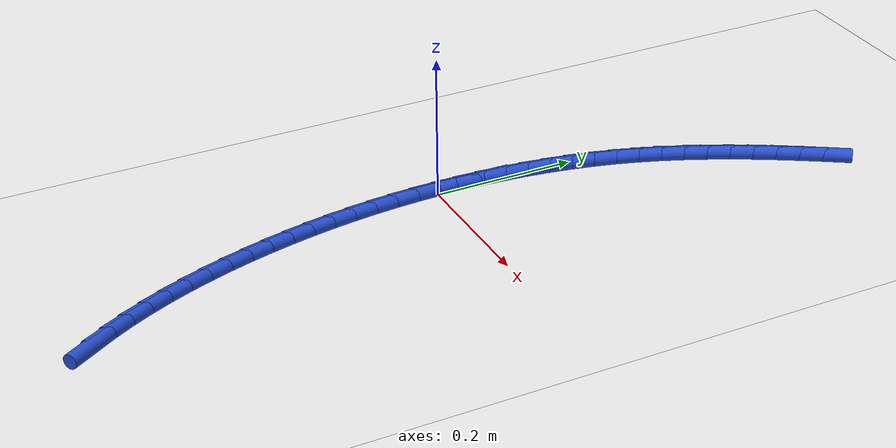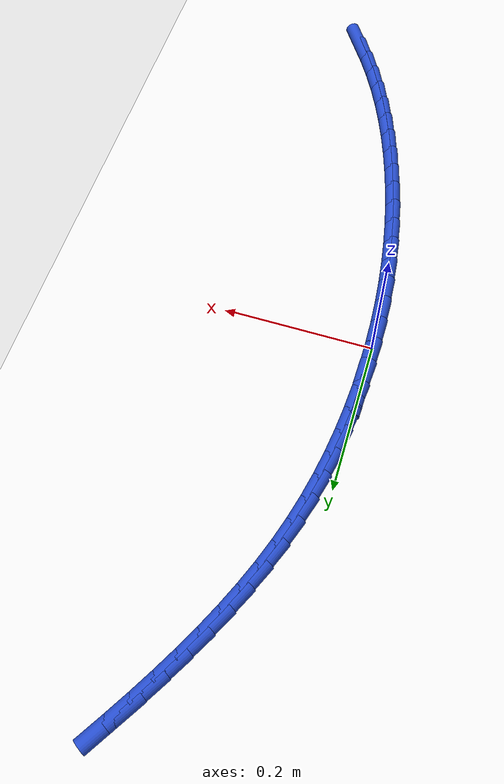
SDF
<sdf version="1.6">
 <world name="default">
  <model name="ground_plane">
   <static>1</static>
   <link name="link">
    <collision name="collision">
     <geometry><plane><normal>0 0 1</normal><size>100 100</size></plane></geometry>
     <surface><friction><ode><mu>100</mu><mu2>50</mu2></ode></friction></surface>
    </collision>
    <visual name="visual">
     <cast_shadows>0</cast_shadows>
     <geometry><plane><normal>0 0 1</normal><size>100 100</size></plane></geometry>
     <material>
      <script><uri>file://media/materials/scripts/gazebo.material</uri><name>Gazebo/WhiteGlow</name></script>
     </material>
    </visual>
   </link>
  </model>
  <model name="line">
   <link name="link_0">
    <pose>2.168404344971009e-18 8.326672684688674e-17 0.01 0 1.57 1.5648901160144602</pose>
    <collision name="collision">
     <geometry><cylinder><radius>0.01</radius><length>0.08</length></cylinder></geometry>
    </collision>
    <visual name="visual">
     <material>
      <script><name>Gazebo/Blue</name><uri>file://media/materials/scripts/gazebo.material</uri></script>
     </material>
     <geometry><cylinder><radius>0.01</radius><length>0.08</length></cylinder></geometry>
    </visual>
   </link>
   <link name="link_1">
    <pose>0.00019060022542057974 0.032270776686496104 0.01 0 1.57 1.53334410636547</pose>
    <collision name="collision">
     <geometry><cylinder><radius>0.01</radius><length>0.08</length></cylinder></geometry>
    </collision>
    <visual name="visual">
     <material>
      <script><name>Gazebo/Blue</name><uri>file://media/materials/scripts/gazebo.material</uri></script>
     </material>
     <geometry><cylinder><radius>0.01</radius><length>0.08</length></cylinder></geometry>
    </visual>
   </link>
   <link name="link_2">
    <pose>0.0014006621932245817 0.064565154134899 0.01 0 1.57 1.5004089411498507</pose>
    <collision name="collision">
     <geometry><cylinder><radius>0.01</radius><length>0.08</length></cylinder></geometry>
    </collision>
    <visual name="visual">
     <material>
      <script><name>Gazebo/Blue</name><uri>file://media/materials/scripts/gazebo.material</uri></script>
     </material>
     <geometry><cylinder><radius>0.01</radius><length>0.08</length></cylinder></geometry>
    </visual>
   </link>
   <link name="link_3">
    <pose>0.003674035857047578 0.09680982430764065 0.01 0 1.57 1.4659406801537984</pose>
    <collision name="collision">
     <geometry><cylinder><radius>0.01</radius><length>0.08</length></cylinder></geometry>
    </collision>
    <visual name="visual">
     <material>
      <script><name>Gazebo/Blue</name><uri>file://media/materials/scripts/gazebo.material</uri></script>
     </material>
     <geometry><cylinder><radius>0.01</radius><length>0.08</length></cylinder></geometry>
    </visual>
   </link>
   <link name="link_4">
    <pose>0.007054571170525126 0.12893147916715292 0.01 0 1.57 1.4297961804503372</pose>
    <collision name="collision">
     <geometry><cylinder><radius>0.01</radius><length>0.08</length></cylinder></geometry>
    </collision>
    <visual name="visual">
     <material>
      <script><name>Gazebo/Blue</name><uri>file://media/materials/scripts/gazebo.material</uri></script>
     </material>
     <geometry><cylinder><radius>0.01</radius><length>0.08</length></cylinder></geometry>
    </visual>
   </link>
   <link name="link_5">
    <pose>0.011586118087292804 0.16085681067586768 0.01 0 1.57 1.3918350641744912</pose>
    <collision name="collision">
     <geometry><cylinder><radius>0.01</radius><length>0.08</length></cylinder></geometry>
    </collision>
    <visual name="visual">
     <material>
      <script><name>Gazebo/Blue</name><uri>file://media/materials/scripts/gazebo.material</uri></script>
     </material>
     <geometry><cylinder><radius>0.01</radius><length>0.08</length></cylinder></geometry>
    </visual>
   </link>
   <link name="link_6">
    <pose>0.01731252656098618 0.1925125107962168 0.01 0 1.57 1.351922615156664</pose>
    <collision name="collision">
     <geometry><cylinder><radius>0.01</radius><length>0.08</length></cylinder></geometry>
    </collision>
    <visual name="visual">
     <material>
      <script><name>Gazebo/Blue</name><uri>file://media/materials/scripts/gazebo.material</uri></script>
     </material>
     <geometry><cylinder><radius>0.01</radius><length>0.08</length></cylinder></geometry>
    </visual>
   </link>
   <link name="link_7">
    <pose>0.02427764654524081 0.2238252714906321 0.01 0 1.57 1.3099337440673813</pose>
    <collision name="collision">
     <geometry><cylinder><radius>0.01</radius><length>0.08</length></cylinder></geometry>
    </collision>
    <visual name="visual">
     <material>
      <script><name>Gazebo/Blue</name><uri>file://media/materials/scripts/gazebo.material</uri></script>
     </material>
     <geometry><cylinder><radius>0.01</radius><length>0.08</length></cylinder></geometry>
    </visual>
   </link>
   <link name="link_8">
    <pose>0.032525327993692274 0.25472178472154544 0.01 0 1.57 1.2658759121494043</pose>
    <collision name="collision">
     <geometry><cylinder><radius>0.01</radius><length>0.08</length></cylinder></geometry>
    </collision>
    <visual name="visual">
     <material>
      <script><name>Gazebo/Blue</name><uri>file://media/materials/scripts/gazebo.material</uri></script>
     </material>
     <geometry><cylinder><radius>0.01</radius><length>0.08</length></cylinder></geometry>
    </visual>
   </link>
   <link name="link_9">
    <pose>0.04209624716913201 0.2851311646936632 0.01 0 1.57 1.2223420193794066</pose>
    <collision name="collision">
     <geometry><cylinder><radius>0.01</radius><length>0.08</length></cylinder></geometry>
    </collision>
    <visual name="visual">
     <material>
      <script><name>Gazebo/Blue</name><uri>file://media/materials/scripts/gazebo.material</uri></script>
     </material>
     <geometry><cylinder><radius>0.01</radius><length>0.08</length></cylinder></geometry>
    </visual>
   </link>
   <link name="link_10">
    <pose>0.052960229221948235 0.31503660099838793 0.01 0 1.57 1.1820578470017629</pose>
    <collision name="collision">
     <geometry><cylinder><radius>0.01</radius><length>0.08</length></cylinder></geometry>
    </collision>
    <visual name="visual">
     <material>
      <script><name>Gazebo/Blue</name><uri>file://media/materials/scripts/gazebo.material</uri></script>
     </material>
     <geometry><cylinder><radius>0.01</radius><length>0.08</length></cylinder></geometry>
    </visual>
   </link>
   <link name="link_11">
    <pose>0.0650174191005162 0.3444744649449694 0.01 0 1.57 1.1452625385008472</pose>
    <collision name="collision">
     <geometry><cylinder><radius>0.01</radius><length>0.08</length></cylinder></geometry>
    </collision>
    <visual name="visual">
     <material>
      <script><name>Gazebo/Blue</name><uri>file://media/materials/scripts/gazebo.material</uri></script>
     </material>
     <geometry><cylinder><radius>0.01</radius><length>0.08</length></cylinder></geometry>
    </visual>
   </link>
   <link name="link_12">
    <pose>0.07816502226483196 0.37348337133560167 0.01 0 1.57 1.1120261956993076</pose>
    <collision name="collision">
     <geometry><cylinder><radius>0.01</radius><length>0.08</length></cylinder></geometry>
    </collision>
    <visual name="visual">
     <material>
      <script><name>Gazebo/Blue</name><uri>file://media/materials/scripts/gazebo.material</uri></script>
     </material>
     <geometry><cylinder><radius>0.01</radius><length>0.08</length></cylinder></geometry>
    </visual>
   </link>
   <link name="link_13">
    <pose>0.09230024417489151 0.4021019349724785 0.01 0 1.57 1.082371617127295</pose>
    <collision name="collision">
     <geometry><cylinder><radius>0.01</radius><length>0.08</length></cylinder></geometry>
    </collision>
    <visual name="visual">
     <material>
      <script><name>Gazebo/Blue</name><uri>file://media/materials/scripts/gazebo.material</uri></script>
     </material>
     <geometry><cylinder><radius>0.01</radius><length>0.08</length></cylinder></geometry>
    </visual>
   </link>
   <link name="link_14">
    <pose>0.107320290290691 0.43036877065779433 0.01 0 1.57 1.0562868428455916</pose>
    <collision name="collision">
     <geometry><cylinder><radius>0.01</radius><length>0.08</length></cylinder></geometry>
    </collision>
    <visual name="visual">
     <material>
      <script><name>Gazebo/Blue</name><uri>file://media/materials/scripts/gazebo.material</uri></script>
     </material>
     <geometry><cylinder><radius>0.01</radius><length>0.08</length></cylinder></geometry>
    </visual>
   </link>
   <link name="link_15">
    <pose>0.1231223660722264 0.45832249319374324 0.01 0 1.57 1.0337366831834836</pose>
    <collision name="collision">
     <geometry><cylinder><radius>0.01</radius><length>0.08</length></cylinder></geometry>
    </collision>
    <visual name="visual">
     <material>
      <script><name>Gazebo/Blue</name><uri>file://media/materials/scripts/gazebo.material</uri></script>
     </material>
     <geometry><cylinder><radius>0.01</radius><length>0.08</length></cylinder></geometry>
    </visual>
   </link>
   <link name="link_16">
    <pose>0.13960367697949386 0.48600171738251907 0.01 0 1.57 1.0146727394297614</pose>
    <collision name="collision">
     <geometry><cylinder><radius>0.01</radius><length>0.08</length></cylinder></geometry>
    </collision>
    <visual name="visual">
     <material>
      <script><name>Gazebo/Blue</name><uri>file://media/materials/scripts/gazebo.material</uri></script>
     </material>
     <geometry><cylinder><radius>0.01</radius><length>0.08</length></cylinder></geometry>
    </visual>
   </link>
   <link name="link_17">
    <pose>0.1566614284724893 0.5134450580263159 0.01 0 1.57 0.9990417347318468</pose>
    <collision name="collision">
     <geometry><cylinder><radius>0.01</radius><length>0.08</length></cylinder></geometry>
    </collision>
    <visual name="visual">
     <material>
      <script><name>Gazebo/Blue</name><uri>file://media/materials/scripts/gazebo.material</uri></script>
     </material>
     <geometry><cylinder><radius>0.01</radius><length>0.08</length></cylinder></geometry>
    </visual>
   </link>
   <link name="link_213">
    <pose>0.14580725782803572 -0.5199203853892096 0.01 0 1.57 -1.002889117735109</pose>
    <collision name="collision">
     <geometry><cylinder><radius>0.01</radius><length>0.08</length></cylinder></geometry>
    </collision>
    <visual name="visual">
     <material>
      <script><name>Gazebo/Blue</name><uri>file://media/materials/scripts/gazebo.material</uri></script>
     </material>
     <geometry><cylinder><radius>0.01</radius><length>0.08</length></cylinder></geometry>
    </visual>
   </link>
   <link name="link_214">
    <pose>0.12869687070785976 -0.49310243362702333 0.01 0 1.57 -1.051240910045647</pose>
    <collision name="collision">
     <geometry><cylinder><radius>0.01</radius><length>0.08</length></cylinder></geometry>
    </collision>
    <visual name="visual">
     <material>
      <script><name>Gazebo/Blue</name><uri>file://media/materials/scripts/gazebo.material</uri></script>
     </material>
     <geometry><cylinder><radius>0.01</radius><length>0.08</length></cylinder></geometry>
    </visual>
   </link>
   <link name="link_215">
    <pose>0.11283557709183845 -0.46537152494570205 0.01 0 1.57 -1.0963873934882313</pose>
    <collision name="collision">
     <geometry><cylinder><radius>0.01</radius><length>0.08</length></cylinder></geometry>
    </collision>
    <visual name="visual">
     <material>
      <script><name>Gazebo/Blue</name><uri>file://media/materials/scripts/gazebo.material</uri></script>
     </material>
     <geometry><cylinder><radius>0.01</radius><length>0.08</length></cylinder></geometry>
    </visual>
   </link>
   <link name="link_216">
    <pose>0.09817924627239932 -0.43683088480660304 0.01 0 1.57 -1.138478302333094</pose>
    <collision name="collision">
     <geometry><cylinder><radius>0.01</radius><length>0.08</length></cylinder></geometry>
    </collision>
    <visual name="visual">
     <material>
      <script><name>Gazebo/Blue</name><uri>file://media/materials/scripts/gazebo.material</uri></script>
     </material>
     <geometry><cylinder><radius>0.01</radius><length>0.08</length></cylinder></geometry>
    </visual>
   </link>
   <link name="link_217">
    <pose>0.08468374747370062 -0.4075837387518881 0.01 0 1.57 -1.1776870979174767</pose>
    <collision name="collision">
     <geometry><cylinder><radius>0.01</radius><length>0.08</length></cylinder></geometry>
    </collision>
    <visual name="visual">
     <material>
      <script><name>Gazebo/Blue</name><uri>file://media/materials/scripts/gazebo.material</uri></script>
     </material>
     <geometry><cylinder><radius>0.01</radius><length>0.08</length></cylinder></geometry>
    </visual>
   </link>
   <link name="link_218">
    <pose>0.07230494991990111 -0.37773331232371976 0.01 0 1.57 -1.2141997698848652</pose>
    <collision name="collision">
     <geometry><cylinder><radius>0.01</radius><length>0.08</length></cylinder></geometry>
    </collision>
    <visual name="visual">
     <material>
      <script><name>Gazebo/Blue</name><uri>file://media/materials/scripts/gazebo.material</uri></script>
     </material>
     <geometry><cylinder><radius>0.01</radius><length>0.08</length></cylinder></geometry>
    </visual>
   </link>
   <link name="link_219">
    <pose>0.06099872283515918 -0.3473828310642597 0.01 0 1.57 -1.2482064060150198</pose>
    <collision name="collision">
     <geometry><cylinder><radius>0.01</radius><length>0.08</length></cylinder></geometry>
    </collision>
    <visual name="visual">
     <material>
      <script><name>Gazebo/Blue</name><uri>file://media/materials/scripts/gazebo.material</uri></script>
     </material>
     <geometry><cylinder><radius>0.01</radius><length>0.08</length></cylinder></geometry>
    </visual>
   </link>
   <link name="link_220">
    <pose>0.05072093544363414 -0.31663552051567195 0.01 0 1.57 -1.2798951454302778</pose>
    <collision name="collision">
     <geometry><cylinder><radius>0.01</radius><length>0.08</length></cylinder></geometry>
    </collision>
    <visual name="visual">
     <material>
      <script><name>Gazebo/Blue</name><uri>file://media/materials/scripts/gazebo.material</uri></script>
     </material>
     <geometry><cylinder><radius>0.01</radius><length>0.08</length></cylinder></geometry>
    </visual>
   </link>
   <link name="link_221">
    <pose>0.04142745696948438 -0.28559460622011834 0.01 0 1.57 -1.3094943393426315</pose>
    <collision name="collision">
     <geometry><cylinder><radius>0.01</radius><length>0.08</length></cylinder></geometry>
    </collision>
    <visual name="visual">
     <material>
      <script><name>Gazebo/Blue</name><uri>file://media/materials/scripts/gazebo.material</uri></script>
     </material>
     <geometry><cylinder><radius>0.01</radius><length>0.08</length></cylinder></geometry>
    </visual>
   </link>
   <link name="link_222">
    <pose>0.033075177601632345 -0.2543613417899396 0.01 0 1.57 -1.3382396986680298</pose>
    <collision name="collision">
     <geometry><cylinder><radius>0.01</radius><length>0.08</length></cylinder></geometry>
    </collision>
    <visual name="visual">
     <material>
      <script><name>Gazebo/Blue</name><uri>file://media/materials/scripts/gazebo.material</uri></script>
     </material>
     <geometry><cylinder><radius>0.01</radius><length>0.08</length></cylinder></geometry>
    </visual>
   </link>
   <link name="link_223">
    <pose>0.02564518937020754 -0.2229902364892749 0.01 0 1.57 -1.3672548491255887</pose>
    <collision name="collision">
     <geometry><cylinder><radius>0.01</radius><length>0.08</length></cylinder></geometry>
    </collision>
    <visual name="visual">
     <material>
      <script><name>Gazebo/Blue</name><uri>file://media/materials/scripts/gazebo.material</uri></script>
     </material>
     <geometry><cylinder><radius>0.01</radius><length>0.08</length></cylinder></geometry>
    </visual>
   </link>
   <link name="link_224">
    <pose>0.019143192835772038 -0.1914882697391698 0.01 0 1.57 -1.3965597517495008</pose>
    <collision name="collision">
     <geometry><cylinder><radius>0.01</radius><length>0.08</length></cylinder></geometry>
    </collision>
    <visual name="visual">
     <material>
      <script><name>Gazebo/Blue</name><uri>file://media/materials/scripts/gazebo.material</uri></script>
     </material>
     <geometry><cylinder><radius>0.01</radius><length>0.08</length></cylinder></geometry>
    </visual>
   </link>
   <link name="link_225">
    <pose>0.013575990868576878 -0.1598602919181899 0.01 0 1.57 -1.4261219426304097</pose>
    <collision name="collision">
     <geometry><cylinder><radius>0.01</radius><length>0.08</length></cylinder></geometry>
    </collision>
    <visual name="visual">
     <material>
      <script><name>Gazebo/Blue</name><uri>file://media/materials/scripts/gazebo.material</uri></script>
     </material>
     <geometry><cylinder><radius>0.01</radius><length>0.08</length></cylinder></geometry>
    </visual>
   </link>
   <link name="link_226">
    <pose>0.00895038633887332 -0.12811115340490187 0.01 0 1.57 -1.4559066625867352</pose>
    <collision name="collision">
     <geometry><cylinder><radius>0.01</radius><length>0.08</length></cylinder></geometry>
    </collision>
    <visual name="visual">
     <material>
      <script><name>Gazebo/Blue</name><uri>file://media/materials/scripts/gazebo.material</uri></script>
     </material>
     <geometry><cylinder><radius>0.01</radius><length>0.08</length></cylinder></geometry>
    </visual>
   </link>
   <link name="link_227">
    <pose>0.0052731821169126 -0.09624570457787235 0.01 0 1.57 -1.485877084560514</pose>
    <collision name="collision">
     <geometry><cylinder><radius>0.01</radius><length>0.08</length></cylinder></geometry>
    </collision>
    <visual name="visual">
     <material>
      <script><name>Gazebo/Blue</name><uri>file://media/materials/scripts/gazebo.material</uri></script>
     </material>
     <geometry><cylinder><radius>0.01</radius><length>0.08</length></cylinder></geometry>
    </visual>
   </link>
   <link name="link_228">
    <pose>0.0025511810729459228 -0.0642687958156671 0.01 0 1.57 -1.5159945829585113</pose>
    <collision name="collision">
     <geometry><cylinder><radius>0.01</radius><length>0.08</length></cylinder></geometry>
    </collision>
    <visual name="visual">
     <material>
      <script><name>Gazebo/Blue</name><uri>file://media/materials/scripts/gazebo.material</uri></script>
     </material>
     <geometry><cylinder><radius>0.01</radius><length>0.08</length></cylinder></geometry>
    </visual>
   </link>
   <link name="link_229">
    <pose>0.00079118607722467 -0.0321852774968544 0.01 0 1.57 -1.5462190408783636</pose>
    <collision name="collision">
     <geometry><cylinder><radius>0.01</radius><length>0.08</length></cylinder></geometry>
    </collision>
    <visual name="visual">
     <material>
      <script><name>Gazebo/Blue</name><uri>file://media/materials/scripts/gazebo.material</uri></script>
     </material>
     <geometry><cylinder><radius>0.01</radius><length>0.08</length></cylinder></geometry>
    </visual>
   </link>
   <link name="link_230">
    <pose>9.974659986866641e-18 -4.163336342344337e-17 0.01 0 1.57 1.56508346387196</pose>
    <collision name="collision">
     <geometry><cylinder><radius>0.01</radius><length>0.08</length></cylinder></geometry>
    </collision>
    <visual name="visual">
     <material>
      <script><name>Gazebo/Blue</name><uri>file://media/materials/scripts/gazebo.material</uri></script>
     </material>
     <geometry><cylinder><radius>0.01</radius><length>0.08</length></cylinder></geometry>
    </visual>
   </link>
   <link name="link_231">
    <pose>0.00018442571152319735 0.032282186296329354 0.01 0 1.57 1.5347696792093566</pose>
    <collision name="collision">
     <geometry><cylinder><radius>0.01</radius><length>0.08</length></cylinder></geometry>
    </collision>
    <visual name="visual">
     <material>
      <script><name>Gazebo/Blue</name><uri>file://media/materials/scripts/gazebo.material</uri></script>
     </material>
     <geometry><cylinder><radius>0.01</radius><length>0.08</length></cylinder></geometry>
    </visual>
   </link>
   <link name="link_232">
    <pose>0.0013512660820454757 0.06465643101356719 0.01 0 1.57 1.5499001935087102</pose>
    <collision name="collision">
     <geometry><cylinder><radius>0.01</radius><length>0.08</length></cylinder></geometry>
    </collision>
    <visual name="visual">
     <material>
      <script><name>Gazebo/Blue</name><uri>file://media/materials/scripts/gazebo.material</uri></script>
     </material>
     <geometry><cylinder><radius>0.01</radius><length>0.08</length></cylinder></geometry>
    </visual>
   </link>
  </model>
 </world>
</sdf>
